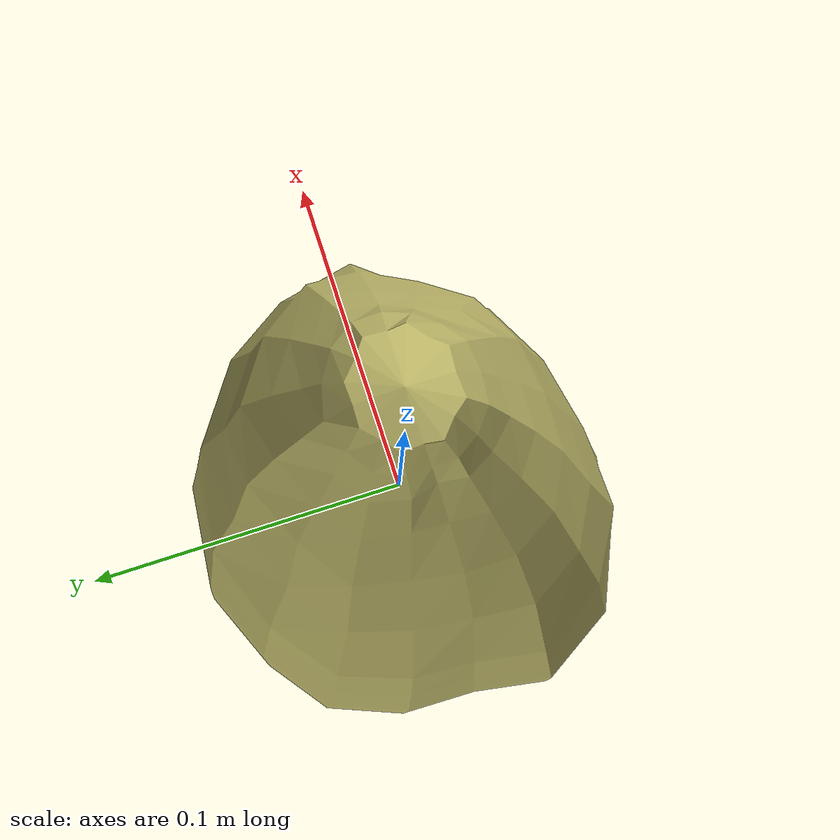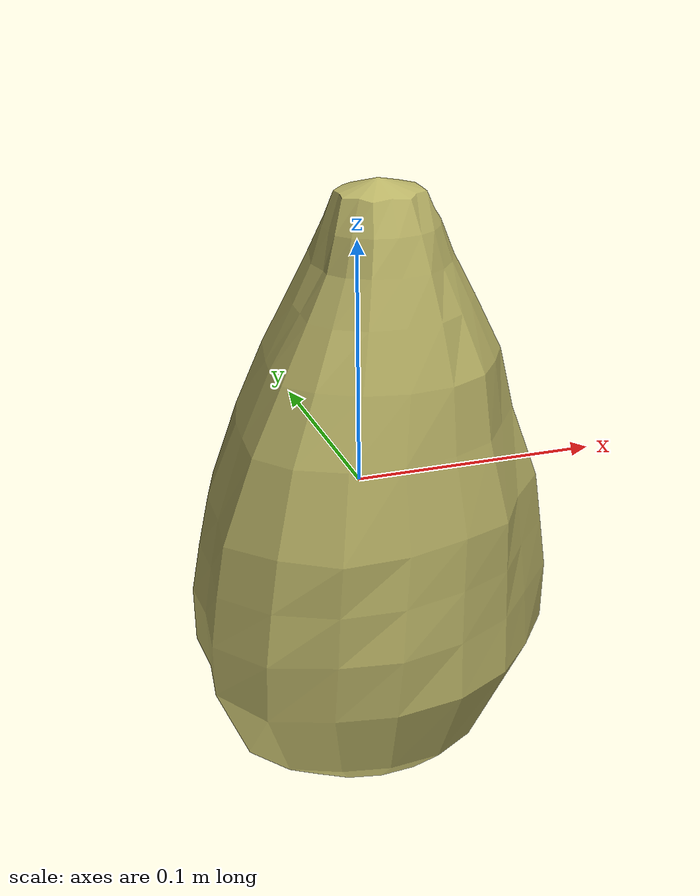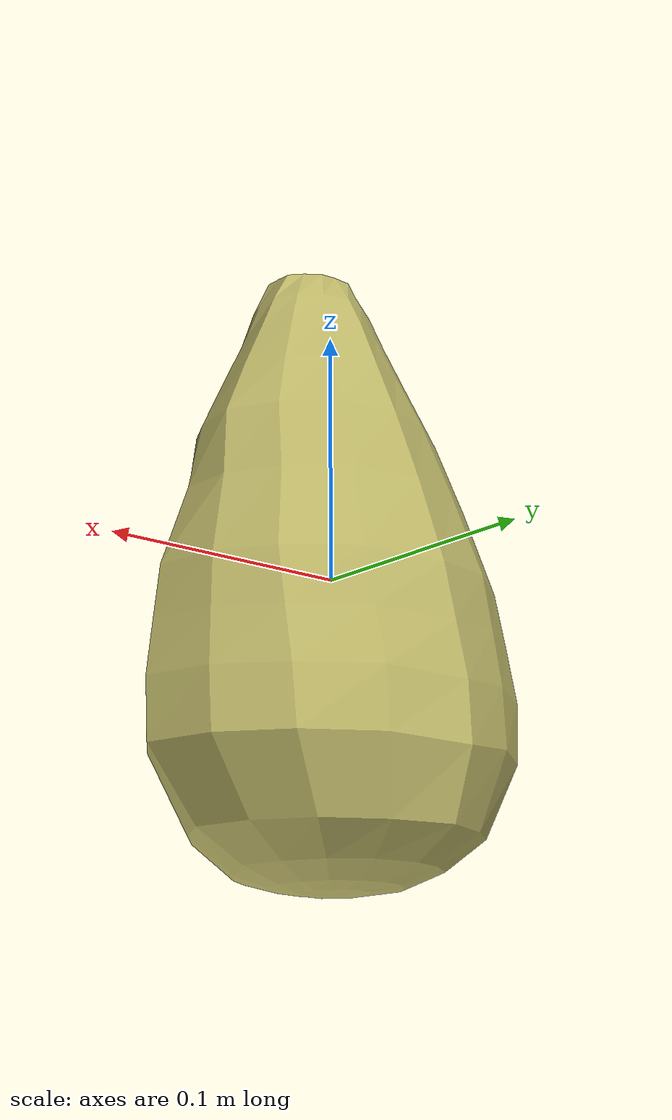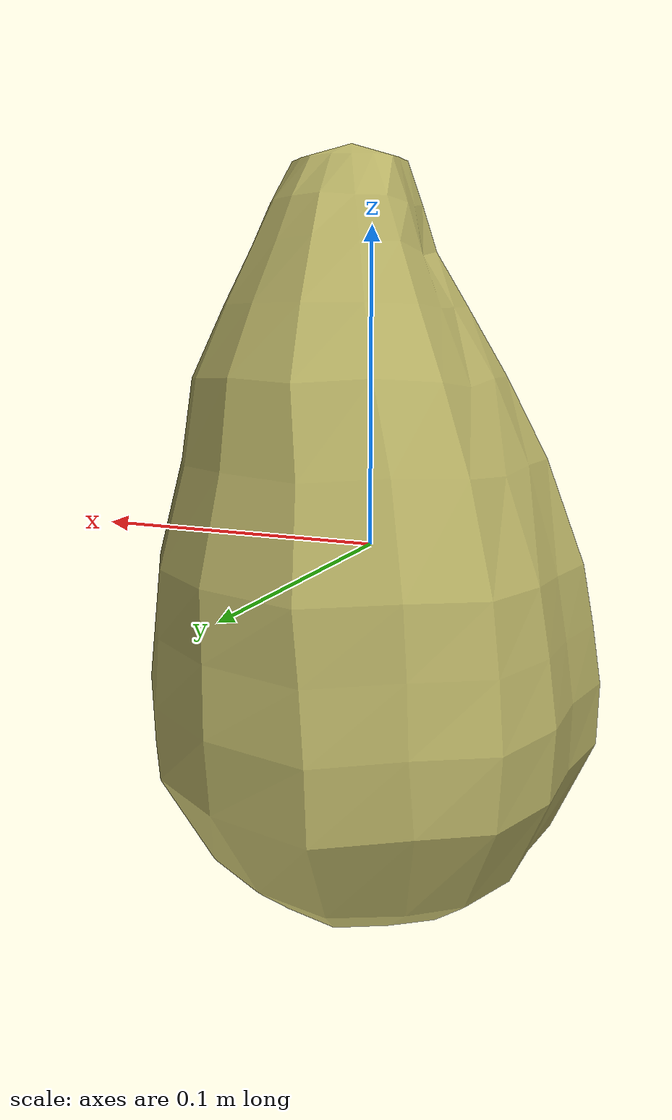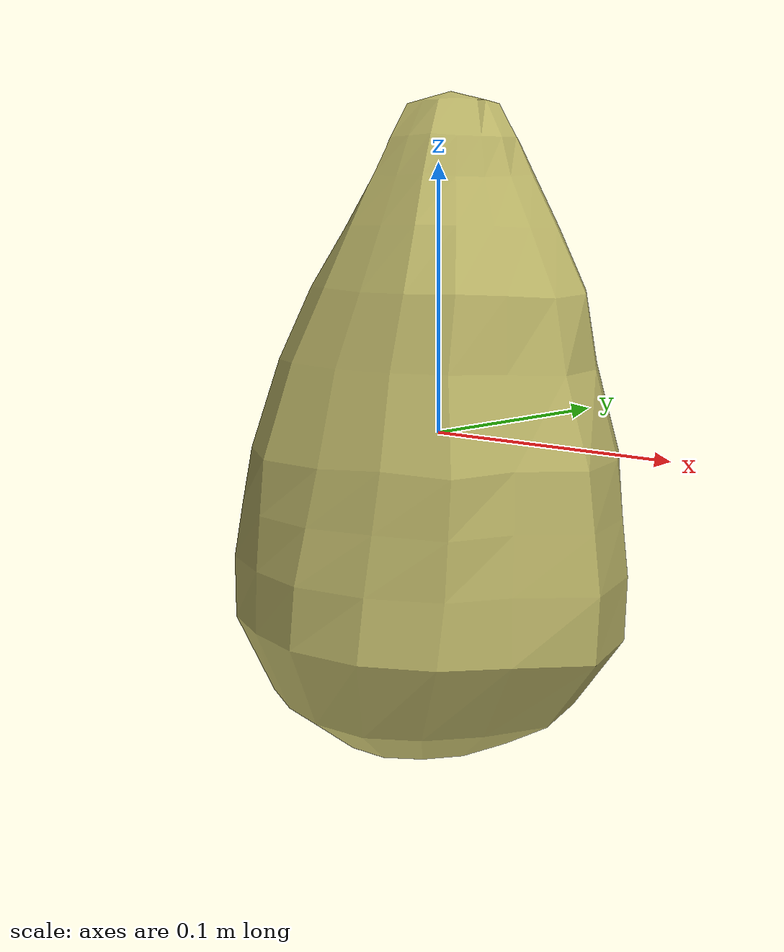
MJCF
<mujoco model="Lettuce_4">
  <compiler autolimits="true" boundmass="0.01" angle="radian"/>
  <default>
    <default class="/">
      <default class="__VISUAL_MJT__">
        <geom contype="0" conaffinity="0" group="0"/>
      </default>
      <default class="__STRUCTURAL_MJT__">
        <geom contype="8" conaffinity="15" group="4" friction="0.90000000000000002 0.90000000000000002 0.001" solref="0.025000000000000001 1" solimp="0.998 0.998 0.001"/>
      </default>
      <default class="__DYNAMIC_MJT__">
        <geom contype="1" conaffinity="15" group="4" friction="0.90000000000000002 0.90000000000000002 0.001" solref="0.025000000000000001 1" solimp="0.998 0.998 0.001"/>
      </default>
    </default>
  </default>
  <asset>
    <texture name="Lettuce1_Mat" type="2d" file="Lettuce1_AlbedoTransparency.png"/>
    <material name="material_Lettuce1_Mat" class="/" texture="Lettuce1_Mat" specular="0.5" shininess="0.5" rgba="0.9945233 1 0.60294119999999995 1"/>
    <mesh name="Lettuce_4_lettuce_a4" class="/" file="Lettuce_4_lettuce_a4/Lettuce_4_lettuce_a4.obj" scale="1 1 1"/>
  </asset>
  <worldbody>
    <body name="Lettuce_4">
      <joint name="Lettuce_4_free" class="/" type="free" pos="0 0 0" axis="0 0 1" stiffness="0" range="0 0" armature="0" damping="0.10000000000000001" frictionloss="0"/>
      <body name="Lettuce_4_lettuce_a4" pos="0.00189 0.0001 0.0024599999999999999" quat="1 0 0 0">
        <geom name="Lettuce_4_lettuce_a4" class="__VISUAL_MJT__" type="mesh" material="material_Lettuce1_Mat" shellinertia="true" mesh="Lettuce_4_lettuce_a4"/>
        <geom name="Lettuce_4_PrimitiveCollider_0" class="__DYNAMIC_MJT__" type="capsule" size="0.068826578557491302 0.030159525573253632" rgba="0 1 0 1" pos="0.00079989433288574219 -9.7665935754776001e-05 -0.029045280069112778" quat="0.99999999999891198 1.4751396607739272e-06 0 0"/>
        <geom name="Lettuce_4_PrimitiveCollider_1" class="__DYNAMIC_MJT__" type="capsule" size="0.048159100115299225 0.016643717885017395" rgba="0 1 0 1" pos="0.00079999997979030013 -0.0049405656754970551 0.058309968560934067" quat="0.99999999999891198 1.4751396607739272e-06 0 0"/>
      </body>
    </body>
  </worldbody>
</mujoco>
